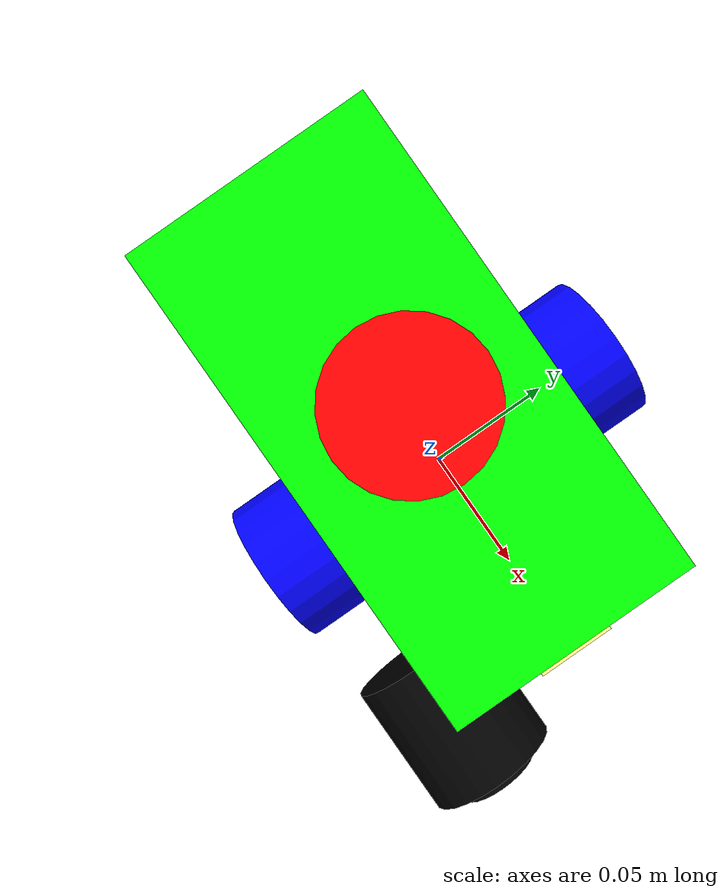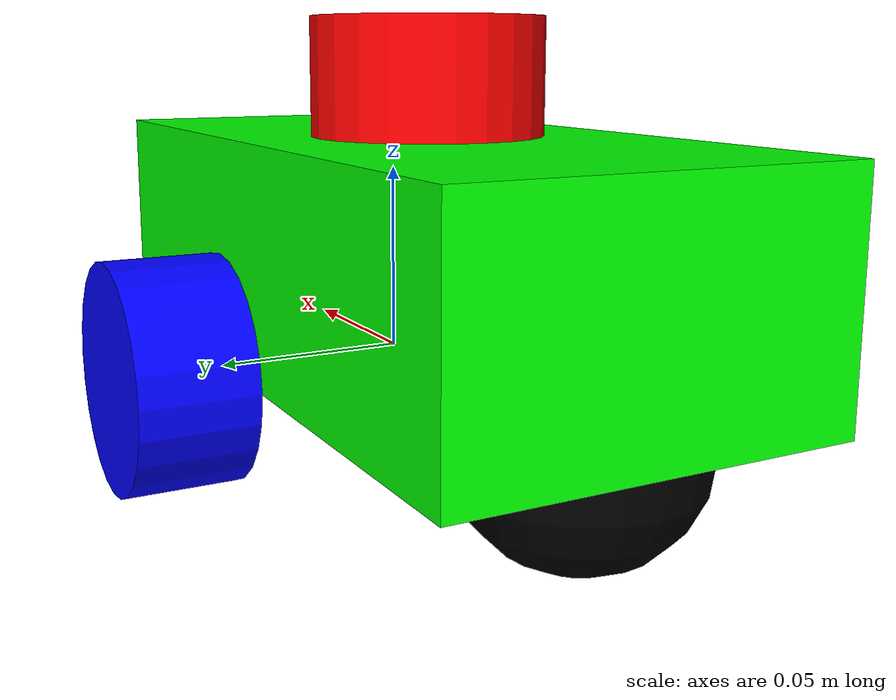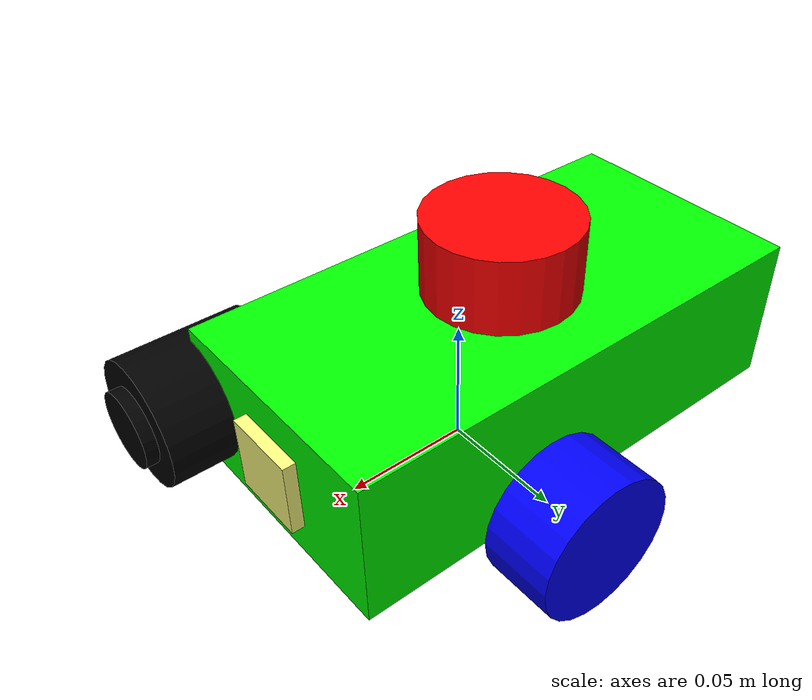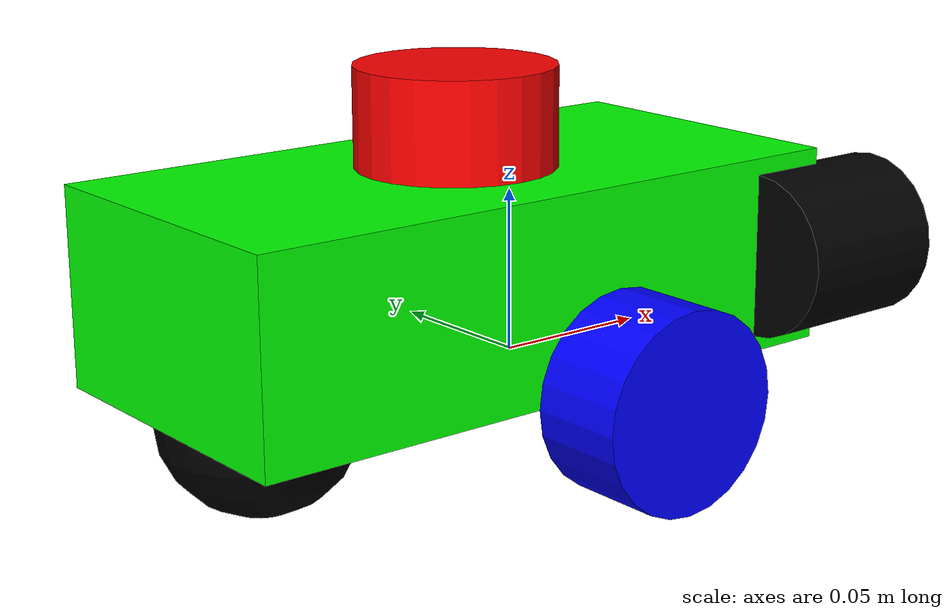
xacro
<?xml version="1.0"?>
<robot xmlns:xacro="http://www.ros.org/wiki/xacro" name="urdf_tutorial">

    <!-- MACROS -->
    <xacro:include filename="macros.xacro"/>

    <!-- COLOR -->
    <material name="red">
        <color rgba="1 0 0 1"/>
    </material>

    <material name="yellow">
        <color rgba="1 1 0.5 1"/>
    </material>

    <material name="green">
        <color rgba="0 1 0 1"/>
    </material>

    <material name="white">
        <color rgba="1 1 1 1" />
    </material>

    <material name="blue">
        <color rgba="0 0 1 1"/>
    </material>

    <material name="black">
        <color rgba="0 0 0 1"/>
    </material>

    <!-- BASE LINK -->
    <link name="base_link">
    </link>

    <!-- BODY LINK -->
    <joint name="body_joint" type="fixed">
        <parent link="base_link"/>
        <child link="body"/>
        <origin xyz="-0.12 0 0"/>
    </joint>

    <link name="body">
        <visual>
            <origin xyz="0.1 0 0.03"/>
            <geometry>
                <box size="0.2 0.1 0.06"/>
            </geometry>
            <material name="green"/>
        </visual>
        <collision>
            <origin xyz="0.1 0 0.03"/>
            <geometry>
                <box size="0.2 0.1 0.06"/>
            </geometry>
        </collision>
        <xacro:inertial_box mass="0.5" x="0.2" y="0.1" z="0.06">
            <origin xyz="0.1 0 0.03" rpy="0 0 0"/>
        </xacro:inertial_box>
    </link>

    <gazebo reference="body">
        <material>Gazebo/Green</material>
    </gazebo>

    <!-- LEFT WHEEL LINK -->
    <joint name="left_wheel_joint" type="continuous">
        <parent link="base_link"/>
        <child link="left_wheel"/>
        <origin xyz="0 0.065 0" rpy="-${pi/2} 0 0" />
        <axis xyz="0 0 1"/>
    </joint>

    <link name="left_wheel">
        <visual>
            <geometry>
                <cylinder radius="0.03" length="0.03"/>
            </geometry>
            <material name="blue"/>
        </visual>
        <collision>
            <geometry>
                <cylinder radius="0.03" length="0.03"/>
            </geometry>
        </collision>
        <xacro:inertial_cylinder mass="0.1" length="0.03" radius="0.03">
            <origin xyz="0 0 0" rpy="0 0 0"/>
        </xacro:inertial_cylinder>
    </link>

    <gazebo reference="left_wheel">
        <material>Gazebo/Black</material>
    </gazebo>

    <!-- RIGHT WHEEL LINK -->
    <joint name="right_wheel_joint" type="continuous">
        <parent link="base_link"/>
        <child link="right_wheel"/>
        <origin xyz="0 -0.065 0" rpy="${pi/2} 0 0" />
        <axis xyz="0 0 -1"/>
    </joint>

    <link name="right_wheel">
        <visual>
            <geometry>
                <cylinder radius="0.03" length="0.03"/>
            </geometry>
            <material name="blue"/>
        </visual>
        <collision>
            <geometry>
                <cylinder radius="0.03" length="0.03"/>
            </geometry>
        </collision>
        <xacro:inertial_cylinder mass="0.1" length="0.03" radius="0.03">
            <origin xyz="0 0 0" rpy="0 0 0"/>
        </xacro:inertial_cylinder>
    </link>

    <gazebo reference="right_wheel">
        <material>Gazebo/Black</material>
    </gazebo>

    <!-- CASTER WHEEL LINK -->
    <joint name="caster_wheel_joint" type="fixed">
        <parent link="body"/>
        <child link="caster_wheel"/>
        <origin xyz="0.03 0 0"/>
    </joint>

    <link name="caster_wheel">
        <visual>
            <geometry>
                <sphere radius="0.03"/>
            </geometry>
            <material name="black"/>
        </visual>
        <collision>
            <geometry>
                <sphere radius="0.03"/>
            </geometry>
        </collision>
        <xacro:inertial_sphere mass="10.1" radius="0.03">
            <origin xyz="0 0 0" rpy="0 0 0"/>
        </xacro:inertial_sphere>
    </link>

    <gazebo reference="caster_wheel">
        <material>Gazebo/Blue</material>

        <mu1 value="0.001"/>
        <mu2 value="0.001"/>
    </gazebo>

    <!-- LiDAR -->
    <joint name="laser_joint" type="fixed">
        <parent link="body"/>
        <child link="laser_frame"/>
        <origin xyz="0.1 0 0.075" rpy="0 0 0"/>
    </joint>

    <link name="laser_frame">
        <visual>
            <geometry>
                <cylinder radius="0.03" length="0.03"/>
            </geometry>
            <material name="red"/>
        </visual>
        <collision>
            <geometry>
                <cylinder radius="0.03" length="0.03"/>
            </geometry>
        </collision>
    </link>

    <!-- CAMERA -->

    <joint name="camera_joint" type="fixed">
        <parent link="body"/>
        <child link="camera_link"/>
        <origin xyz="0.20 0 0.03" rpy="0 0 0"/>
    </joint>

    <link name="camera_link">
        <visual>
            <geometry>
                <box size="0.01 0.03 0.03"/>
            </geometry>
            <material name="yellow"/>
        </visual>
        <collision>
            <geometry>
                <box size="0.01 0.03 0.03"/>
            </geometry>
        </collision>
    </link>

    <joint name="camera_optical_joint" type="fixed">
        <parent link="camera_link"/>
        <child link="camera_optical_frame"/>
        <origin xyz="0 0 0" rpy="${-pi/2} 0 ${-pi/2}"/>
    </joint>

    <link name="camera_optical_frame">
    </link>

    <!-- GUN -->
    <joint name="gun_joint" type="fixed">
        <parent link="camera_optical_frame"/>
        <child link="gun"/>
        <origin xyz="0.05 0 0" rpy="0 0 0"/>
    </joint>

    <link name="gun">
        <!-- 외부 원통 -->
        <visual>
            <origin xyz="0 0 0" rpy="0 0 0"/>
            <geometry>
                <cylinder radius="0.025" length="0.05"/> <!-- 외부 원통 -->
            </geometry>
            <material name="black"/> <!-- 검은색 유지 -->
        </visual>
        <collision>
            <origin xyz="0 0 0" rpy="0 0 0"/>
            <geometry>
                <cylinder radius="0.025" length="0.05"/>
            </geometry>
            <!-- 충돌 설정 -->
            <surface>
                <contact>
                    <ode>
                        <max_vel>1000</max_vel> <!-- 최대 속도 설정 -->
                        <min_depth>0.001</min_depth> <!-- 최소 깊이 설정 -->
                    </ode>
                </contact>
            </surface>
        </collision>

        <!-- 내부 구멍 (작은 원통) -->
        <visual>
            <origin xyz="0 0 0.02" rpy="0 0 0"/> <!-- 내부 구멍 위치 조정 -->
            <geometry>
                <cylinder radius="0.015" length="0.02"/> <!-- 내부 구멍 크기 -->
            </geometry>
            <material name="black"/>
        </visual>

        <!-- 관성 설정 -->
        <inertial>
            <mass value="0.5"/> <!-- 총의 질량 -->
            <inertia ixx="0.0001" iyy="0.0001" izz="0.0001" ixy="0" ixz="0" iyz="0"/>
        </inertial>
    </link>

    <!-- GAZEBO -->
    <xacro:include filename="gazebo.xacro"/>
    <xacro:include filename="lidar.xacro"/>
    <xacro:include filename="camera.xacro"/>
</robot>
